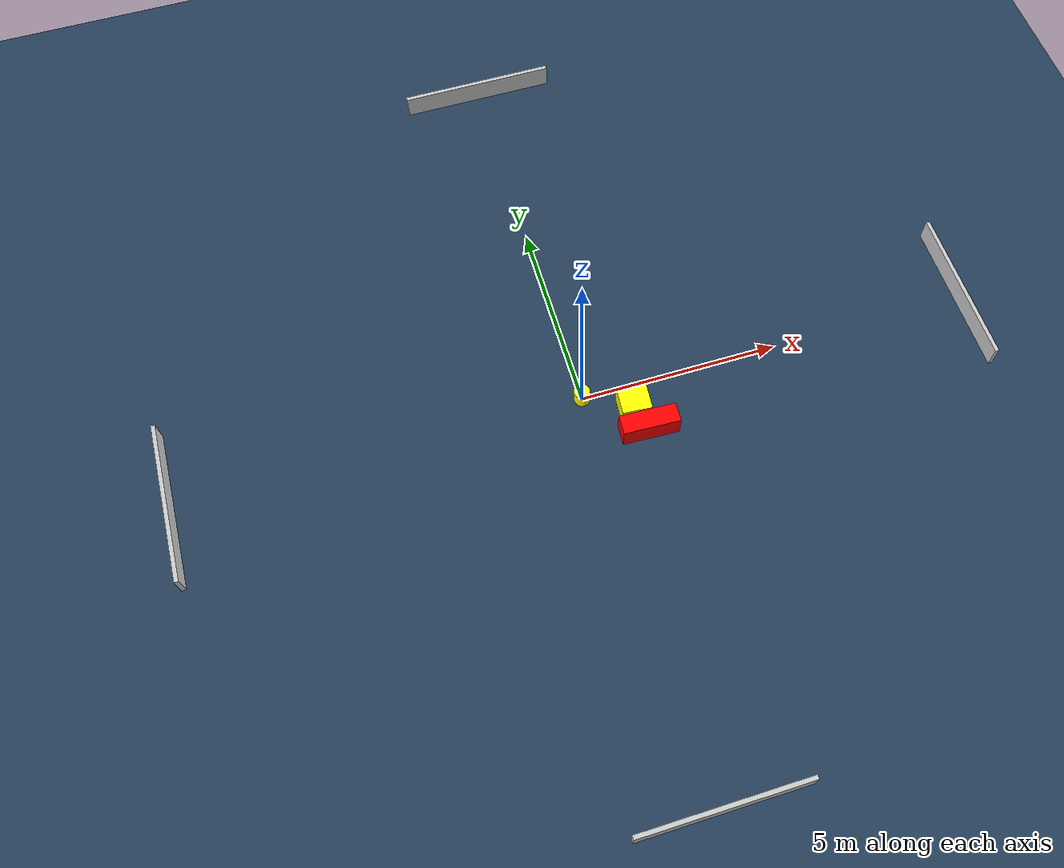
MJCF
<?xml version="1.0" ?>
<mujoco model="generated_environment">
  <option timestep="0.01" integrator="RK4" cone="elliptic"/>
  <default>
    <geom density="1"/>
  </default>
  <asset>
    <texture builtin="gradient" height="3072" name="skybox" rgb1="0.3 0.5 0.7" rgb2="0 0 0" type="skybox" width="512"/>
    <texture builtin="checker" height="300" name="groundplane" rgb1="0.2 0.3 0.4" rgb2="0.1 0.2 0.3" type="2d" width="300"/>
    <material name="groundplane" reflectance="0.2" texrepeat="5 5" texture="groundplane"/>
  </asset>
  <worldbody>
    <light dir="0 0 -1" directional="true" pos="0 0 1.5"/>
    <geom condim="3" friction="0.5 0.005 0.001" material="groundplane" name="floor" pos="0 0 0" size="0 0 0.05" type="plane"/>
    <body name="walls">
      <geom name="wall_1" condim="4" pos="-10.0 0.0 0.3" rgba="0.800000011920929 0.800000011920929 0.800000011920929 1.0" size="0.05 2.0 0.3" type="box"/>
      <geom name="wall_2" condim="4" pos="10.0 0.0 0.3" rgba="0.800000011920929 0.800000011920929 0.800000011920929 1.0" size="0.05 2.0 0.3" type="box"/>
      <geom name="wall_3" condim="4" pos="0.0 -10.0 0.3" rgba="0.800000011920929 0.800000011920929 0.800000011920929 1.0" size="2.0 0.05 0.3" type="box"/>
      <geom name="wall_4" condim="4" pos="0.0 10.0 0.3" rgba="0.800000011920929 0.800000011920929 0.800000011920929 1.0" size="2.0 0.05 0.3" type="box"/>
    </body>
    <body name="robot">
      <joint name="joint_x" type="slide" pos="0 0 0" axis="1 0 0"/>
      <joint name="joint_y" type="slide" pos="0 0 0" axis="0 1 0"/>
      <geom name="robot" type="cylinder" pos="0.0 0.0 0.2" size="0.2 0.2 0.0" mass="5.0" friction="1.0 0.005 0.0001" condim="4" rgba="1.0 1.0 0.0 1.0"/>
    </body>
    <body name="obstacle_1_movable">
      <geom name="obstacle_1_movable" condim="4" pos="1.1173506242918116 -0.6224679861086185 0.3" euler="0 0 355.69306931597123" friction="0.0 0.005 0.001" rgba="1.0 1.0 0.0 1.0" size="0.36678786564401344 0.34871892718084274 0.3" type="box" mass="0.1"/>
      <joint type="free"/>
    </body>
    <body name="obstacle_2_static">
      <geom name="obstacle_2_static" condim="4" pos="1.2996634778540688 -1.251802053104018 0.3" euler="0 0 87.56663407495343" friction="0.0 0.005 0.001" rgba="1.0 0.0 0.0 1.0" size="0.24113536716932066 0.7030886064152557 0.3" type="box"/>
    </body>
  </worldbody>
  <actuator>
    <motor name="actuator_x" joint="joint_x" gear="1" ctrlrange="-1 1"/>
    <motor name="actuator_y" joint="joint_y" gear="1" ctrlrange="-1 1"/>
  </actuator>
</mujoco>
